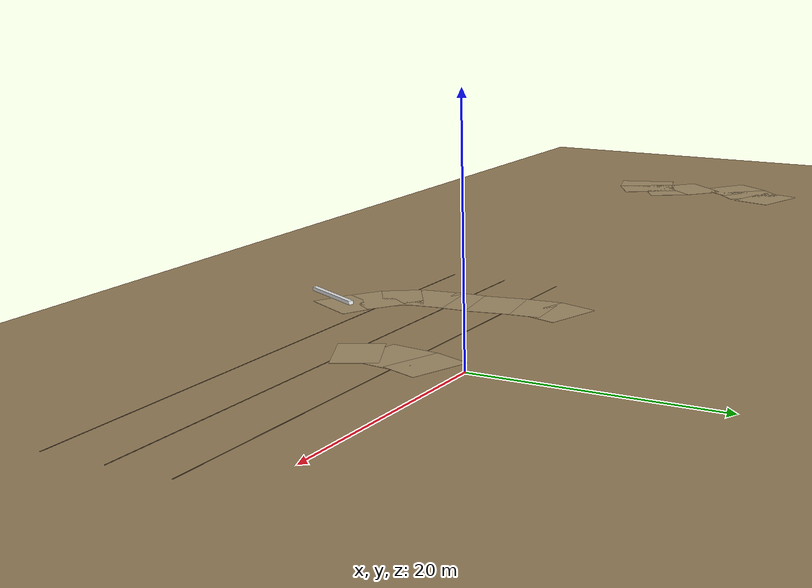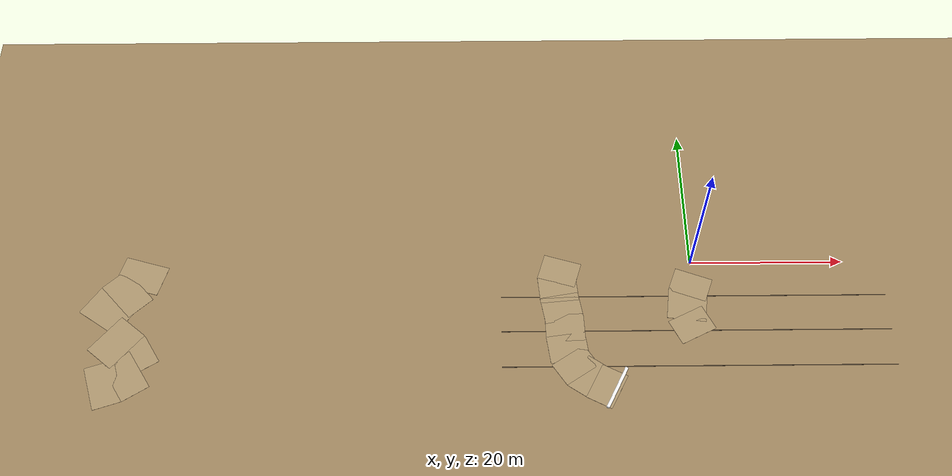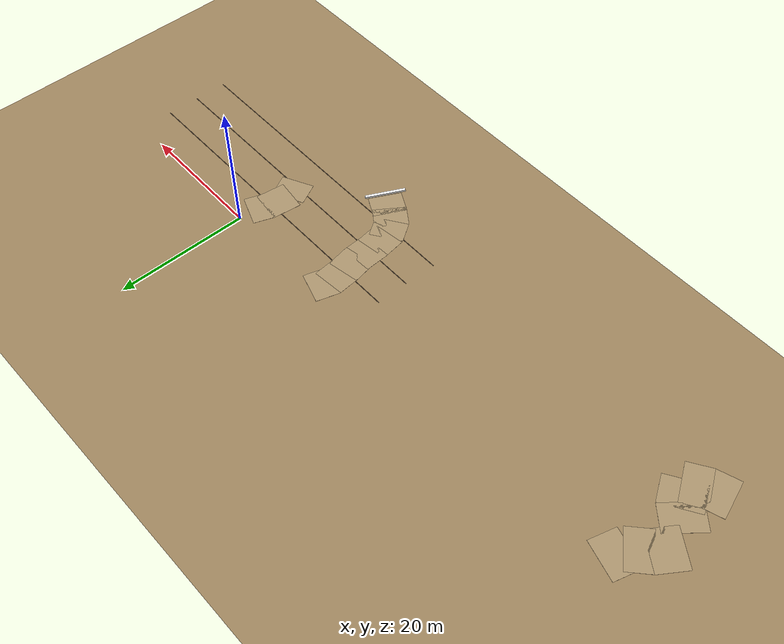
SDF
<sdf version="1.6">
 <world name="navitas_arena">
  <model name="ground_plane">
   <static>true</static>
   <link name="link">
    <collision name="collision">
     <geometry><plane><normal>0 0 1</normal><size>400 400</size></plane></geometry>
     <surface><friction><ode><mu>0.800</mu><mu2>0.800</mu2></ode></friction></surface>
    </collision>
    <visual name="visual">
     <cast_shadows>false</cast_shadows>
     <geometry><plane><normal>0 0 1</normal><size>400 400</size></plane></geometry>
     <material>
      <ambient>0.62 0.52 0.37 1</ambient>
      <diffuse>0.62 0.52 0.37 1</diffuse>
      <specular>0.04 0.04 0.04 1</specular>
     </material>
    </visual>
   </link>
  </model>
  <model name="road_kolay_3_5">
   <static>true</static>
   <pose>-74.918 -17.017 0.040 0 0 0.317</pose>
   <link name="link">
    <collision name="col"><geometry><box><size>3.795 6.000 0.020</size></box></geometry></collision>
    <visual name="vis">
     <geometry><box><size>3.795 6.000 0.020</size></box></geometry>
     <material>
      <ambient>0.67 0.58 0.43 1</ambient>
      <diffuse>0.67 0.58 0.43 1</diffuse>
      <specular>0.04 0.04 0.04 1</specular>
     </material>
    </visual>
   </link>
  </model>
  <model name="road_kolay_3_6">
   <static>true</static>
   <pose>-72.310 -15.783 0.040 0 0 0.566</pose>
   <link name="link">
    <collision name="col"><geometry><box><size>3.820 6.000 0.020</size></box></geometry></collision>
    <visual name="vis">
     <geometry><box><size>3.820 6.000 0.020</size></box></geometry>
     <material>
      <ambient>0.67 0.58 0.43 1</ambient>
      <diffuse>0.67 0.58 0.43 1</diffuse>
      <specular>0.04 0.04 0.04 1</specular>
     </material>
    </visual>
   </link>
  </model>
  <model name="road_kolay_3_7">
   <static>true</static>
   <pose>-71.950 -13.587 0.040 0 0 2.124</pose>
   <link name="link">
    <collision name="col"><geometry><box><size>4.221 6.000 0.020</size></box></geometry></collision>
    <visual name="vis">
     <geometry><box><size>4.221 6.000 0.020</size></box></geometry>
     <material>
      <ambient>0.67 0.58 0.43 1</ambient>
      <diffuse>0.67 0.58 0.43 1</diffuse>
      <specular>0.04 0.04 0.04 1</specular>
     </material>
    </visual>
   </link>
  </model>
  <model name="road_kolay_3_8">
   <static>true</static>
   <pose>-74.099 -11.124 0.040 0 0 2.452</pose>
   <link name="link">
    <collision name="col"><geometry><box><size>4.206 6.000 0.020</size></box></geometry></collision>
    <visual name="vis">
     <geometry><box><size>4.206 6.000 0.020</size></box></geometry>
     <material>
      <ambient>0.67 0.58 0.43 1</ambient>
      <diffuse>0.67 0.58 0.43 1</diffuse>
      <specular>0.04 0.04 0.04 1</specular>
     </material>
    </visual>
   </link>
  </model>
  <model name="road_kolay_3_10">
   <static>true</static>
   <pose>-75.678 -6.500 0.040 0 0 0.974</pose>
   <link name="link">
    <collision name="col"><geometry><box><size>4.526 6.000 0.020</size></box></geometry></collision>
    <visual name="vis">
     <geometry><box><size>4.526 6.000 0.020</size></box></geometry>
     <material>
      <ambient>0.67 0.58 0.43 1</ambient>
      <diffuse>0.67 0.58 0.43 1</diffuse>
      <specular>0.04 0.04 0.04 1</specular>
     </material>
    </visual>
   </link>
  </model>
  <model name="road_kolay_3_11">
   <static>true</static>
   <pose>-73.572 -4.000 0.040 0 0 0.744</pose>
   <link name="link">
    <collision name="col"><geometry><box><size>3.855 6.000 0.020</size></box></geometry></collision>
    <visual name="vis">
     <geometry><box><size>3.855 6.000 0.020</size></box></geometry>
     <material>
      <ambient>0.67 0.58 0.43 1</ambient>
      <diffuse>0.67 0.58 0.43 1</diffuse>
      <specular>0.04 0.04 0.04 1</specular>
     </material>
    </visual>
   </link>
  </model>
  <model name="road_kolay_3_12">
   <static>true</static>
   <pose>-72.023 -1.417 0.040 0 0 1.287</pose>
   <link name="link">
    <collision name="col"><geometry><box><size>4.199 6.000 0.020</size></box></geometry></collision>
    <visual name="vis">
     <geometry><box><size>4.199 6.000 0.020</size></box></geometry>
     <material>
      <ambient>0.67 0.58 0.43 1</ambient>
      <diffuse>0.67 0.58 0.43 1</diffuse>
      <specular>0.04 0.04 0.04 1</specular>
     </material>
    </visual>
   </link>
  </model>
  <model name="grid_orta_h2">
   <static>true</static>
   <pose>0.000 -15.000 0.015 0 0 0.000</pose>
   <link name="link">
    <collision name="col"><geometry><box><size>50.000 0.100 0.006</size></box></geometry></collision>
    <visual name="vis">
     <geometry><box><size>50.000 0.100 0.006</size></box></geometry>
     <material>
      <ambient>0.30 0.24 0.17 1</ambient>
      <diffuse>0.30 0.24 0.17 1</diffuse>
      <specular>0.04 0.04 0.04 1</specular>
     </material>
    </visual>
   </link>
  </model>
  <model name="grid_orta_h3">
   <static>true</static>
   <pose>0.000 -10.000 0.015 0 0 0.000</pose>
   <link name="link">
    <collision name="col"><geometry><box><size>50.000 0.100 0.006</size></box></geometry></collision>
    <visual name="vis">
     <geometry><box><size>50.000 0.100 0.006</size></box></geometry>
     <material>
      <ambient>0.30 0.24 0.17 1</ambient>
      <diffuse>0.30 0.24 0.17 1</diffuse>
      <specular>0.04 0.04 0.04 1</specular>
     </material>
    </visual>
   </link>
  </model>
  <model name="grid_orta_h4">
   <static>true</static>
   <pose>0.000 -5.000 0.015 0 0 0.000</pose>
   <link name="link">
    <collision name="col"><geometry><box><size>50.000 0.100 0.006</size></box></geometry></collision>
    <visual name="vis">
     <geometry><box><size>50.000 0.100 0.006</size></box></geometry>
     <material>
      <ambient>0.30 0.24 0.17 1</ambient>
      <diffuse>0.30 0.24 0.17 1</diffuse>
      <specular>0.04 0.04 0.04 1</specular>
     </material>
    </visual>
   </link>
  </model>
  <model name="road_orta_1_3">
   <static>true</static>
   <pose>-11.906 -17.758 0.040 0 0 2.664</pose>
   <link name="link">
    <collision name="col"><geometry><box><size>3.518 5.000 0.020</size></box></geometry></collision>
    <visual name="vis">
     <geometry><box><size>3.518 5.000 0.020</size></box></geometry>
     <material>
      <ambient>0.67 0.58 0.43 1</ambient>
      <diffuse>0.67 0.58 0.43 1</diffuse>
      <specular>0.04 0.04 0.04 1</specular>
     </material>
    </visual>
   </link>
  </model>
  <model name="road_orta_1_4">
   <static>true</static>
   <pose>-14.068 -16.469 0.040 0 0 2.539</pose>
   <link name="link">
    <collision name="col"><geometry><box><size>3.324 5.000 0.020</size></box></geometry></collision>
    <visual name="vis">
     <geometry><box><size>3.324 5.000 0.020</size></box></geometry>
     <material>
      <ambient>0.67 0.58 0.43 1</ambient>
      <diffuse>0.67 0.58 0.43 1</diffuse>
      <specular>0.04 0.04 0.04 1</specular>
     </material>
    </visual>
   </link>
  </model>
  <model name="road_orta_1_5">
   <static>true</static>
   <pose>-15.738 -14.771 0.040 0 0 2.157</pose>
   <link name="link">
    <collision name="col"><geometry><box><size>3.328 5.000 0.020</size></box></geometry></collision>
    <visual name="vis">
     <geometry><box><size>3.328 5.000 0.020</size></box></geometry>
     <material>
      <ambient>0.67 0.58 0.43 1</ambient>
      <diffuse>0.67 0.58 0.43 1</diffuse>
      <specular>0.04 0.04 0.04 1</specular>
     </material>
    </visual>
   </link>
  </model>
  <model name="road_orta_1_6">
   <static>true</static>
   <pose>-16.605 -12.340 0.040 0 0 1.707</pose>
   <link name="link">
    <collision name="col"><geometry><box><size>3.767 5.000 0.020</size></box></geometry></collision>
    <visual name="vis">
     <geometry><box><size>3.767 5.000 0.020</size></box></geometry>
     <material>
      <ambient>0.67 0.58 0.43 1</ambient>
      <diffuse>0.67 0.58 0.43 1</diffuse>
      <specular>0.04 0.04 0.04 1</specular>
     </material>
    </visual>
   </link>
  </model>
  <model name="road_orta_1_7">
   <static>true</static>
   <pose>-16.860 -9.460 0.040 0 0 1.612</pose>
   <link name="link">
    <collision name="col"><geometry><box><size>3.822 5.000 0.020</size></box></geometry></collision>
    <visual name="vis">
     <geometry><box><size>3.822 5.000 0.020</size></box></geometry>
     <material>
      <ambient>0.67 0.58 0.43 1</ambient>
      <diffuse>0.67 0.58 0.43 1</diffuse>
      <specular>0.04 0.04 0.04 1</specular>
     </material>
    </visual>
   </link>
  </model>
  <model name="road_orta_1_8">
   <static>true</static>
   <pose>-17.165 -6.600 0.040 0 0 1.744</pose>
   <link name="link">
    <collision name="col"><geometry><box><size>3.742 5.000 0.020</size></box></geometry></collision>
    <visual name="vis">
     <geometry><box><size>3.742 5.000 0.020</size></box></geometry>
     <material>
      <ambient>0.67 0.58 0.43 1</ambient>
      <diffuse>0.67 0.58 0.43 1</diffuse>
      <specular>0.04 0.04 0.04 1</specular>
     </material>
    </visual>
   </link>
  </model>
  <model name="road_orta_1_9">
   <static>true</static>
   <pose>-17.538 -3.800 0.040 0 0 1.662</pose>
   <link name="link">
    <collision name="col"><geometry><box><size>3.712 5.000 0.020</size></box></geometry></collision>
    <visual name="vis">
     <geometry><box><size>3.712 5.000 0.020</size></box></geometry>
     <material>
      <ambient>0.67 0.58 0.43 1</ambient>
      <diffuse>0.67 0.58 0.43 1</diffuse>
      <specular>0.04 0.04 0.04 1</specular>
     </material>
    </visual>
   </link>
  </model>
  <model name="road_orta_1_10">
   <static>true</static>
   <pose>-17.275 -1.117 0.040 0 0 1.275</pose>
   <link name="link">
    <collision name="col"><geometry><box><size>3.584 5.000 0.020</size></box></geometry></collision>
    <visual name="vis">
     <geometry><box><size>3.584 5.000 0.020</size></box></geometry>
     <material>
      <ambient>0.67 0.58 0.43 1</ambient>
      <diffuse>0.67 0.58 0.43 1</diffuse>
      <specular>0.04 0.04 0.04 1</specular>
     </material>
    </visual>
   </link>
  </model>
  <model name="road_orta_2_5">
   <static>true</static>
   <pose>-0.507 -9.213 0.040 0 0 2.032</pose>
   <link name="link">
    <collision name="col"><geometry><box><size>3.609 5.000 0.020</size></box></geometry></collision>
    <visual name="vis">
     <geometry><box><size>3.609 5.000 0.020</size></box></geometry>
     <material>
      <ambient>0.67 0.58 0.43 1</ambient>
      <diffuse>0.67 0.58 0.43 1</diffuse>
      <specular>0.04 0.04 0.04 1</specular>
     </material>
    </visual>
   </link>
  </model>
  <model name="road_orta_2_6">
   <static>true</static>
   <pose>-0.887 -6.250 0.040 0 0 1.444</pose>
   <link name="link">
    <collision name="col"><geometry><box><size>4.428 5.000 0.020</size></box></geometry></collision>
    <visual name="vis">
     <geometry><box><size>4.428 5.000 0.020</size></box></geometry>
     <material>
      <ambient>0.67 0.58 0.43 1</ambient>
      <diffuse>0.67 0.58 0.43 1</diffuse>
      <specular>0.04 0.04 0.04 1</specular>
     </material>
    </visual>
   </link>
  </model>
  <model name="road_orta_2_7">
   <static>true</static>
   <pose>-0.231 -3.333 0.040 0 0 1.214</pose>
   <link name="link">
    <collision name="col"><geometry><box><size>3.390 5.000 0.020</size></box></geometry></collision>
    <visual name="vis">
     <geometry><box><size>3.390 5.000 0.020</size></box></geometry>
     <material>
      <ambient>0.67 0.58 0.43 1</ambient>
      <diffuse>0.67 0.58 0.43 1</diffuse>
      <specular>0.04 0.04 0.04 1</specular>
     </material>
    </visual>
   </link>
  </model>
  <model name="bar_orta_1b">
   <static>true</static>
   <pose>-10.744 -18.360 1.000 0 0 4.248</pose>
   <link name="link">
    <collision name="col"><geometry><box><size>6.000 0.400 0.300</size></box></geometry></collision>
    <visual name="vis">
     <geometry><box><size>6.000 0.400 0.300</size></box></geometry>
     <material>
      <ambient>0.95 0.95 0.95 1</ambient>
      <diffuse>0.95 0.95 0.95 1</diffuse>
      <specular>0.04 0.04 0.04 1</specular>
     </material>
    </visual>
   </link>
  </model>
 </world>
</sdf>
